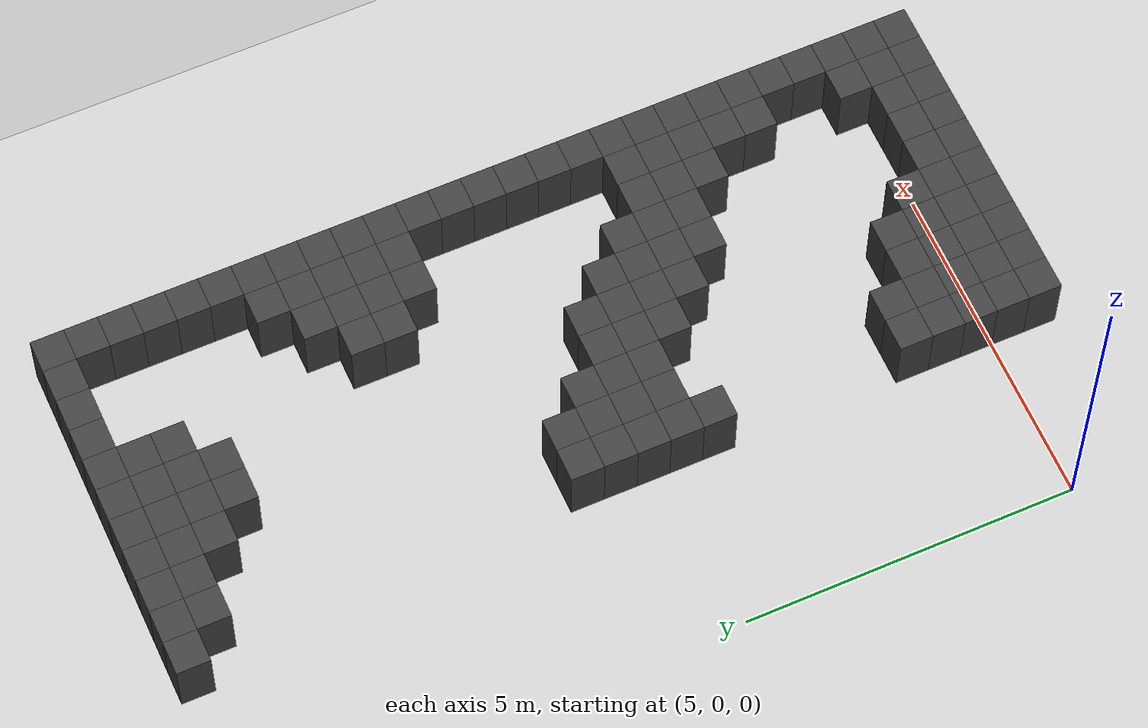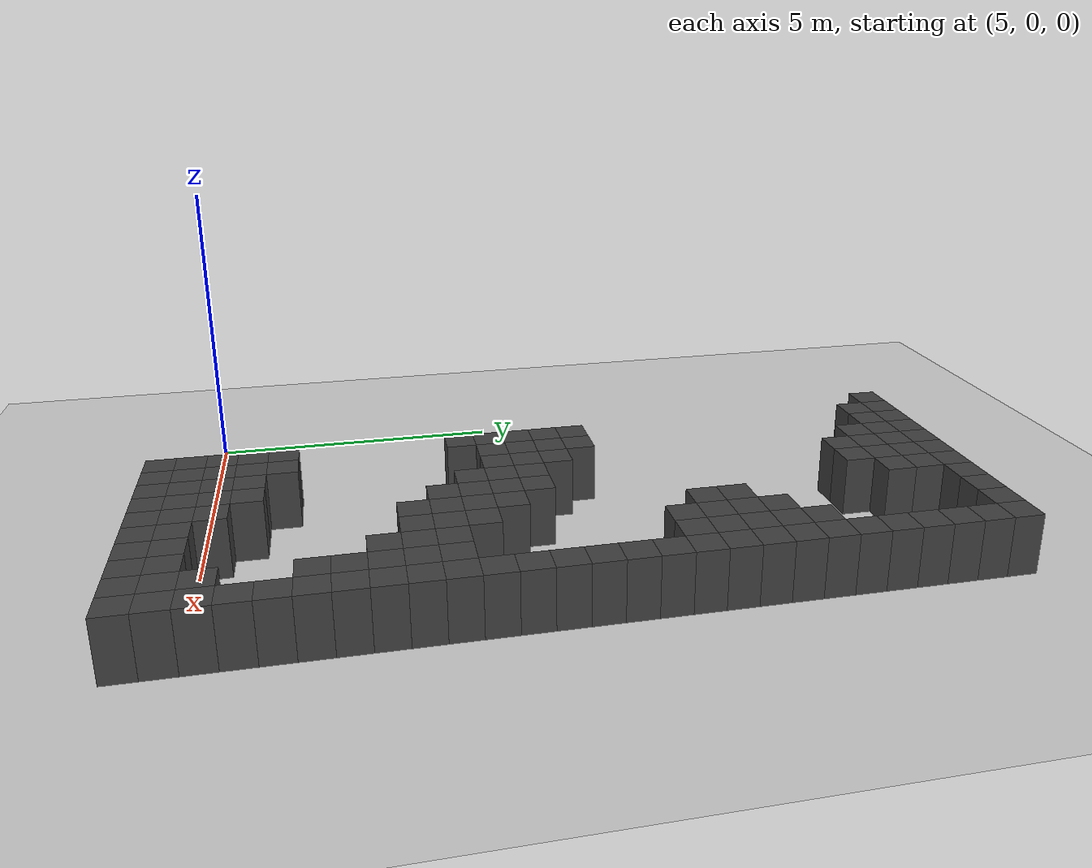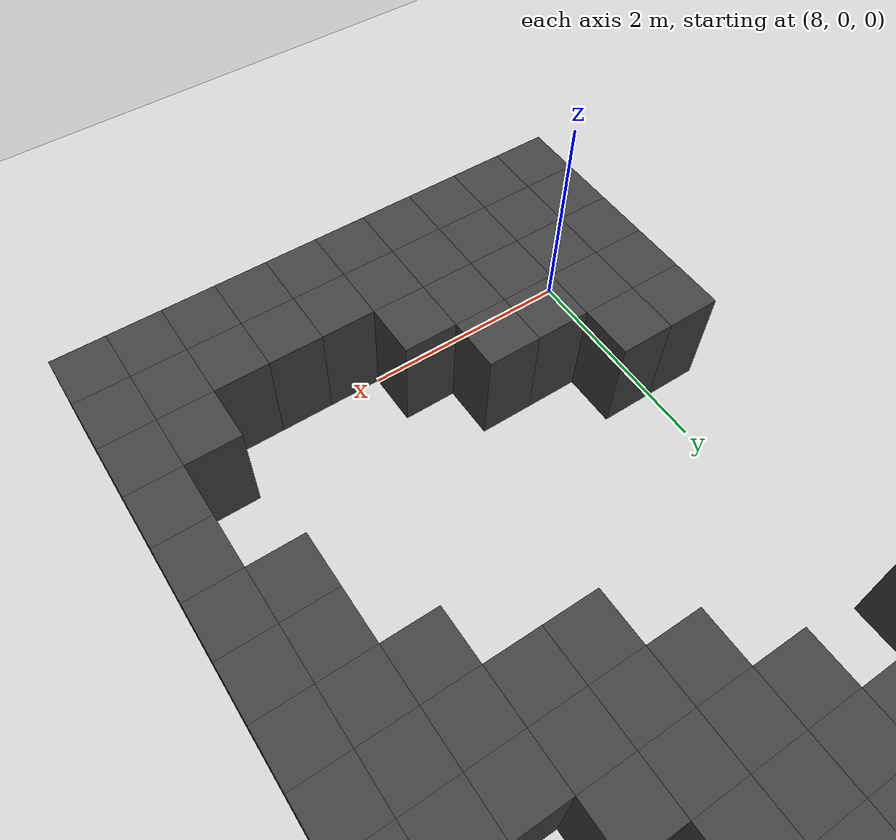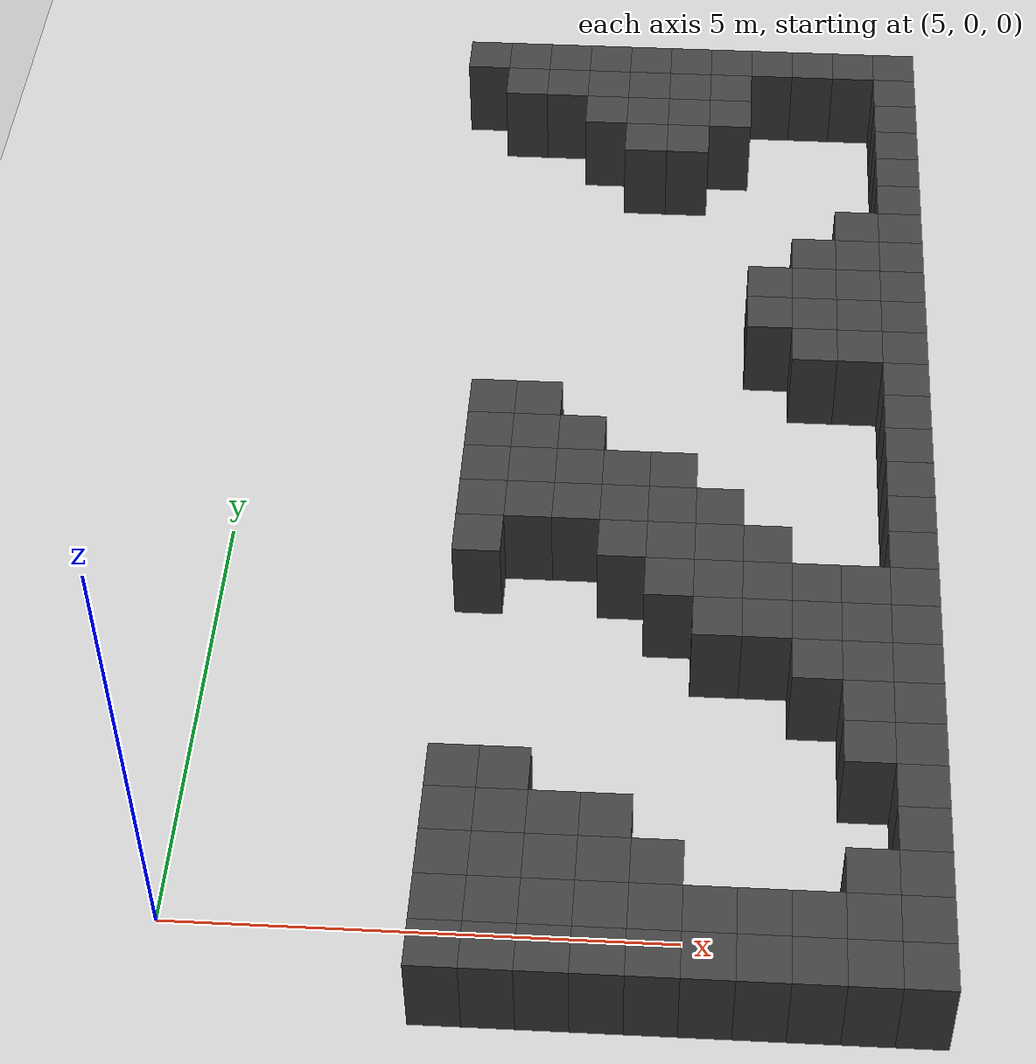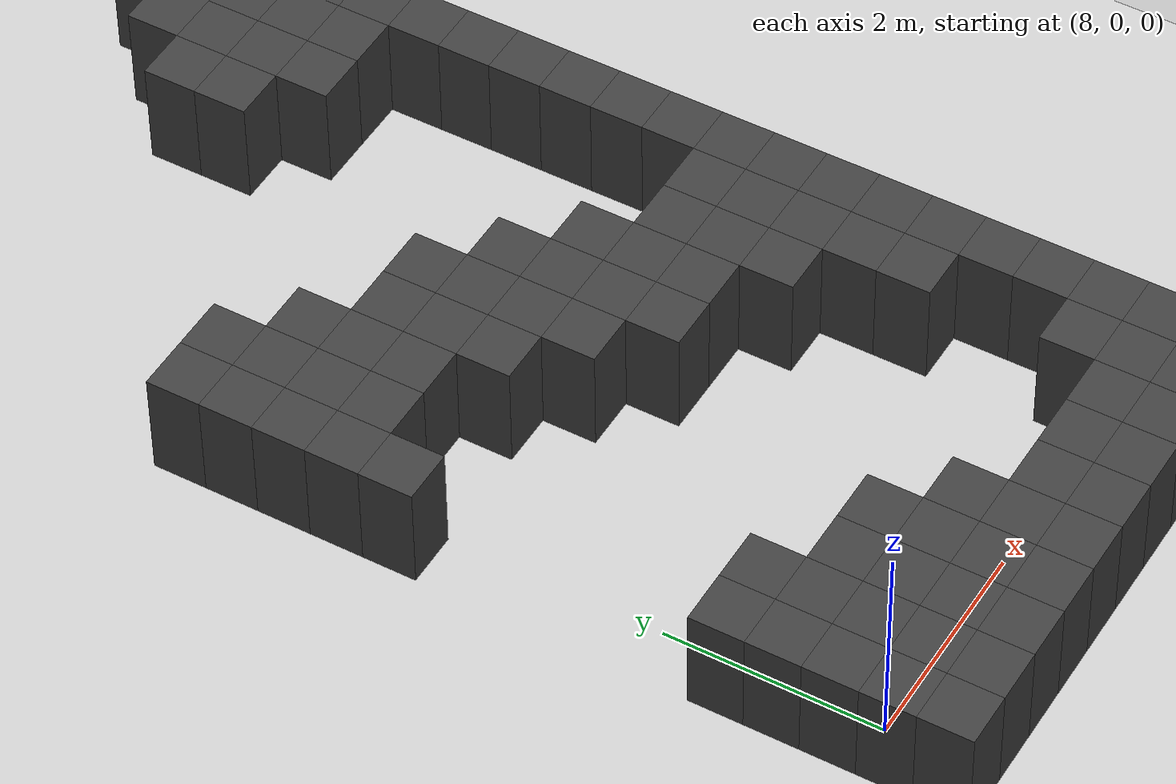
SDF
<sdf version="1.7">
 <world name="map_7972">
  <model name="ground_plane">
   <static>true</static>
   <link name="link">
    <collision name="collision">
     <geometry><plane><normal>0 0 1</normal><size>200 200</size></plane></geometry>
    </collision>
    <visual name="visual">
     <geometry><plane><normal>0 0 1</normal><size>200 200</size></plane></geometry>
     <material><ambient>0.8 0.8 0.8 1</ambient><diffuse>0.8 0.8 0.8 1</diffuse></material>
    </visual>
   </link>
  </model>
  <model name="maze_environment">
   <static>true</static>
   <link name="wall_39">
    <pose>7.250 12.250 0.500 0 0 0</pose>
    <collision name="col"><geometry><box><size>0.5 0.5 1.0</size></box></geometry></collision>
    <visual name="vis">
     <geometry><box><size>0.5 0.5 1.0</size></box></geometry>
     <material><ambient>0.15 0.15 0.15 1</ambient><diffuse>0.25 0.25 0.25 1</diffuse></material>
    </visual>
   </link>
   <link name="wall_40">
    <pose>7.750 12.250 0.500 0 0 0</pose>
    <collision name="col"><geometry><box><size>0.5 0.5 1.0</size></box></geometry></collision>
    <visual name="vis">
     <geometry><box><size>0.5 0.5 1.0</size></box></geometry>
     <material><ambient>0.15 0.15 0.15 1</ambient><diffuse>0.25 0.25 0.25 1</diffuse></material>
    </visual>
   </link>
   <link name="wall_41">
    <pose>8.250 12.250 0.500 0 0 0</pose>
    <collision name="col"><geometry><box><size>0.5 0.5 1.0</size></box></geometry></collision>
    <visual name="vis">
     <geometry><box><size>0.5 0.5 1.0</size></box></geometry>
     <material><ambient>0.15 0.15 0.15 1</ambient><diffuse>0.25 0.25 0.25 1</diffuse></material>
    </visual>
   </link>
   <link name="wall_42">
    <pose>8.750 12.250 0.500 0 0 0</pose>
    <collision name="col"><geometry><box><size>0.5 0.5 1.0</size></box></geometry></collision>
    <visual name="vis">
     <geometry><box><size>0.5 0.5 1.0</size></box></geometry>
     <material><ambient>0.15 0.15 0.15 1</ambient><diffuse>0.25 0.25 0.25 1</diffuse></material>
    </visual>
   </link>
   <link name="wall_43">
    <pose>9.250 12.250 0.500 0 0 0</pose>
    <collision name="col"><geometry><box><size>0.5 0.5 1.0</size></box></geometry></collision>
    <visual name="vis">
     <geometry><box><size>0.5 0.5 1.0</size></box></geometry>
     <material><ambient>0.15 0.15 0.15 1</ambient><diffuse>0.25 0.25 0.25 1</diffuse></material>
    </visual>
   </link>
   <link name="wall_44">
    <pose>9.750 12.250 0.500 0 0 0</pose>
    <collision name="col"><geometry><box><size>0.5 0.5 1.0</size></box></geometry></collision>
    <visual name="vis">
     <geometry><box><size>0.5 0.5 1.0</size></box></geometry>
     <material><ambient>0.15 0.15 0.15 1</ambient><diffuse>0.25 0.25 0.25 1</diffuse></material>
    </visual>
   </link>
   <link name="wall_45">
    <pose>10.250 12.250 0.500 0 0 0</pose>
    <collision name="col"><geometry><box><size>0.5 0.5 1.0</size></box></geometry></collision>
    <visual name="vis">
     <geometry><box><size>0.5 0.5 1.0</size></box></geometry>
     <material><ambient>0.15 0.15 0.15 1</ambient><diffuse>0.25 0.25 0.25 1</diffuse></material>
    </visual>
   </link>
   <link name="wall_46">
    <pose>10.750 12.250 0.500 0 0 0</pose>
    <collision name="col"><geometry><box><size>0.5 0.5 1.0</size></box></geometry></collision>
    <visual name="vis">
     <geometry><box><size>0.5 0.5 1.0</size></box></geometry>
     <material><ambient>0.15 0.15 0.15 1</ambient><diffuse>0.25 0.25 0.25 1</diffuse></material>
    </visual>
   </link>
   <link name="wall_47">
    <pose>11.250 12.250 0.500 0 0 0</pose>
    <collision name="col"><geometry><box><size>0.5 0.5 1.0</size></box></geometry></collision>
    <visual name="vis">
     <geometry><box><size>0.5 0.5 1.0</size></box></geometry>
     <material><ambient>0.15 0.15 0.15 1</ambient><diffuse>0.25 0.25 0.25 1</diffuse></material>
    </visual>
   </link>
   <link name="wall_48">
    <pose>11.750 12.250 0.500 0 0 0</pose>
    <collision name="col"><geometry><box><size>0.5 0.5 1.0</size></box></geometry></collision>
    <visual name="vis">
     <geometry><box><size>0.5 0.5 1.0</size></box></geometry>
     <material><ambient>0.15 0.15 0.15 1</ambient><diffuse>0.25 0.25 0.25 1</diffuse></material>
    </visual>
   </link>
   <link name="wall_49">
    <pose>12.250 12.250 0.500 0 0 0</pose>
    <collision name="col"><geometry><box><size>0.5 0.5 1.0</size></box></geometry></collision>
    <visual name="vis">
     <geometry><box><size>0.5 0.5 1.0</size></box></geometry>
     <material><ambient>0.15 0.15 0.15 1</ambient><diffuse>0.25 0.25 0.25 1</diffuse></material>
    </visual>
   </link>
   <link name="wall_79">
    <pose>7.750 11.750 0.500 0 0 0</pose>
    <collision name="col"><geometry><box><size>0.5 0.5 1.0</size></box></geometry></collision>
    <visual name="vis">
     <geometry><box><size>0.5 0.5 1.0</size></box></geometry>
     <material><ambient>0.15 0.15 0.15 1</ambient><diffuse>0.25 0.25 0.25 1</diffuse></material>
    </visual>
   </link>
   <link name="wall_80">
    <pose>8.250 11.750 0.500 0 0 0</pose>
    <collision name="col"><geometry><box><size>0.5 0.5 1.0</size></box></geometry></collision>
    <visual name="vis">
     <geometry><box><size>0.5 0.5 1.0</size></box></geometry>
     <material><ambient>0.15 0.15 0.15 1</ambient><diffuse>0.25 0.25 0.25 1</diffuse></material>
    </visual>
   </link>
   <link name="wall_81">
    <pose>8.750 11.750 0.500 0 0 0</pose>
    <collision name="col"><geometry><box><size>0.5 0.5 1.0</size></box></geometry></collision>
    <visual name="vis">
     <geometry><box><size>0.5 0.5 1.0</size></box></geometry>
     <material><ambient>0.15 0.15 0.15 1</ambient><diffuse>0.25 0.25 0.25 1</diffuse></material>
    </visual>
   </link>
   <link name="wall_82">
    <pose>9.250 11.750 0.500 0 0 0</pose>
    <collision name="col"><geometry><box><size>0.5 0.5 1.0</size></box></geometry></collision>
    <visual name="vis">
     <geometry><box><size>0.5 0.5 1.0</size></box></geometry>
     <material><ambient>0.15 0.15 0.15 1</ambient><diffuse>0.25 0.25 0.25 1</diffuse></material>
    </visual>
   </link>
   <link name="wall_83">
    <pose>9.750 11.750 0.500 0 0 0</pose>
    <collision name="col"><geometry><box><size>0.5 0.5 1.0</size></box></geometry></collision>
    <visual name="vis">
     <geometry><box><size>0.5 0.5 1.0</size></box></geometry>
     <material><ambient>0.15 0.15 0.15 1</ambient><diffuse>0.25 0.25 0.25 1</diffuse></material>
    </visual>
   </link>
   <link name="wall_84">
    <pose>10.250 11.750 0.500 0 0 0</pose>
    <collision name="col"><geometry><box><size>0.5 0.5 1.0</size></box></geometry></collision>
    <visual name="vis">
     <geometry><box><size>0.5 0.5 1.0</size></box></geometry>
     <material><ambient>0.15 0.15 0.15 1</ambient><diffuse>0.25 0.25 0.25 1</diffuse></material>
    </visual>
   </link>
   <link name="wall_85">
    <pose>12.250 11.750 0.500 0 0 0</pose>
    <collision name="col"><geometry><box><size>0.5 0.5 1.0</size></box></geometry></collision>
    <visual name="vis">
     <geometry><box><size>0.5 0.5 1.0</size></box></geometry>
     <material><ambient>0.15 0.15 0.15 1</ambient><diffuse>0.25 0.25 0.25 1</diffuse></material>
    </visual>
   </link>
   <link name="wall_108">
    <pose>8.750 11.250 0.500 0 0 0</pose>
    <collision name="col"><geometry><box><size>0.5 0.5 1.0</size></box></geometry></collision>
    <visual name="vis">
     <geometry><box><size>0.5 0.5 1.0</size></box></geometry>
     <material><ambient>0.15 0.15 0.15 1</ambient><diffuse>0.25 0.25 0.25 1</diffuse></material>
    </visual>
   </link>
   <link name="wall_109">
    <pose>9.250 11.250 0.500 0 0 0</pose>
    <collision name="col"><geometry><box><size>0.5 0.5 1.0</size></box></geometry></collision>
    <visual name="vis">
     <geometry><box><size>0.5 0.5 1.0</size></box></geometry>
     <material><ambient>0.15 0.15 0.15 1</ambient><diffuse>0.25 0.25 0.25 1</diffuse></material>
    </visual>
   </link>
   <link name="wall_110">
    <pose>9.750 11.250 0.500 0 0 0</pose>
    <collision name="col"><geometry><box><size>0.5 0.5 1.0</size></box></geometry></collision>
    <visual name="vis">
     <geometry><box><size>0.5 0.5 1.0</size></box></geometry>
     <material><ambient>0.15 0.15 0.15 1</ambient><diffuse>0.25 0.25 0.25 1</diffuse></material>
    </visual>
   </link>
   <link name="wall_111">
    <pose>10.250 11.250 0.500 0 0 0</pose>
    <collision name="col"><geometry><box><size>0.5 0.5 1.0</size></box></geometry></collision>
    <visual name="vis">
     <geometry><box><size>0.5 0.5 1.0</size></box></geometry>
     <material><ambient>0.15 0.15 0.15 1</ambient><diffuse>0.25 0.25 0.25 1</diffuse></material>
    </visual>
   </link>
   <link name="wall_112">
    <pose>12.250 11.250 0.500 0 0 0</pose>
    <collision name="col"><geometry><box><size>0.5 0.5 1.0</size></box></geometry></collision>
    <visual name="vis">
     <geometry><box><size>0.5 0.5 1.0</size></box></geometry>
     <material><ambient>0.15 0.15 0.15 1</ambient><diffuse>0.25 0.25 0.25 1</diffuse></material>
    </visual>
   </link>
   <link name="wall_127">
    <pose>9.250 10.750 0.500 0 0 0</pose>
    <collision name="col"><geometry><box><size>0.5 0.5 1.0</size></box></geometry></collision>
    <visual name="vis">
     <geometry><box><size>0.5 0.5 1.0</size></box></geometry>
     <material><ambient>0.15 0.15 0.15 1</ambient><diffuse>0.25 0.25 0.25 1</diffuse></material>
    </visual>
   </link>
   <link name="wall_128">
    <pose>9.750 10.750 0.500 0 0 0</pose>
    <collision name="col"><geometry><box><size>0.5 0.5 1.0</size></box></geometry></collision>
    <visual name="vis">
     <geometry><box><size>0.5 0.5 1.0</size></box></geometry>
     <material><ambient>0.15 0.15 0.15 1</ambient><diffuse>0.25 0.25 0.25 1</diffuse></material>
    </visual>
   </link>
   <link name="wall_129">
    <pose>12.250 10.750 0.500 0 0 0</pose>
    <collision name="col"><geometry><box><size>0.5 0.5 1.0</size></box></geometry></collision>
    <visual name="vis">
     <geometry><box><size>0.5 0.5 1.0</size></box></geometry>
     <material><ambient>0.15 0.15 0.15 1</ambient><diffuse>0.25 0.25 0.25 1</diffuse></material>
    </visual>
   </link>
   <link name="wall_142">
    <pose>12.250 10.250 0.500 0 0 0</pose>
    <collision name="col"><geometry><box><size>0.5 0.5 1.0</size></box></geometry></collision>
    <visual name="vis">
     <geometry><box><size>0.5 0.5 1.0</size></box></geometry>
     <material><ambient>0.15 0.15 0.15 1</ambient><diffuse>0.25 0.25 0.25 1</diffuse></material>
    </visual>
   </link>
   <link name="wall_151">
    <pose>12.250 9.750 0.500 0 0 0</pose>
    <collision name="col"><geometry><box><size>0.5 0.5 1.0</size></box></geometry></collision>
    <visual name="vis">
     <geometry><box><size>0.5 0.5 1.0</size></box></geometry>
     <material><ambient>0.15 0.15 0.15 1</ambient><diffuse>0.25 0.25 0.25 1</diffuse></material>
    </visual>
   </link>
   <link name="wall_159">
    <pose>11.750 9.250 0.500 0 0 0</pose>
    <collision name="col"><geometry><box><size>0.5 0.5 1.0</size></box></geometry></collision>
    <visual name="vis">
     <geometry><box><size>0.5 0.5 1.0</size></box></geometry>
     <material><ambient>0.15 0.15 0.15 1</ambient><diffuse>0.25 0.25 0.25 1</diffuse></material>
    </visual>
   </link>
   <link name="wall_160">
    <pose>12.250 9.250 0.500 0 0 0</pose>
    <collision name="col"><geometry><box><size>0.5 0.5 1.0</size></box></geometry></collision>
    <visual name="vis">
     <geometry><box><size>0.5 0.5 1.0</size></box></geometry>
     <material><ambient>0.15 0.15 0.15 1</ambient><diffuse>0.25 0.25 0.25 1</diffuse></material>
    </visual>
   </link>
   <link name="wall_172">
    <pose>11.250 8.750 0.500 0 0 0</pose>
    <collision name="col"><geometry><box><size>0.5 0.5 1.0</size></box></geometry></collision>
    <visual name="vis">
     <geometry><box><size>0.5 0.5 1.0</size></box></geometry>
     <material><ambient>0.15 0.15 0.15 1</ambient><diffuse>0.25 0.25 0.25 1</diffuse></material>
    </visual>
   </link>
   <link name="wall_173">
    <pose>11.750 8.750 0.500 0 0 0</pose>
    <collision name="col"><geometry><box><size>0.5 0.5 1.0</size></box></geometry></collision>
    <visual name="vis">
     <geometry><box><size>0.5 0.5 1.0</size></box></geometry>
     <material><ambient>0.15 0.15 0.15 1</ambient><diffuse>0.25 0.25 0.25 1</diffuse></material>
    </visual>
   </link>
   <link name="wall_174">
    <pose>12.250 8.750 0.500 0 0 0</pose>
    <collision name="col"><geometry><box><size>0.5 0.5 1.0</size></box></geometry></collision>
    <visual name="vis">
     <geometry><box><size>0.5 0.5 1.0</size></box></geometry>
     <material><ambient>0.15 0.15 0.15 1</ambient><diffuse>0.25 0.25 0.25 1</diffuse></material>
    </visual>
   </link>
   <link name="wall_192">
    <pose>10.750 8.250 0.500 0 0 0</pose>
    <collision name="col"><geometry><box><size>0.5 0.5 1.0</size></box></geometry></collision>
    <visual name="vis">
     <geometry><box><size>0.5 0.5 1.0</size></box></geometry>
     <material><ambient>0.15 0.15 0.15 1</ambient><diffuse>0.25 0.25 0.25 1</diffuse></material>
    </visual>
   </link>
   <link name="wall_193">
    <pose>11.250 8.250 0.500 0 0 0</pose>
    <collision name="col"><geometry><box><size>0.5 0.5 1.0</size></box></geometry></collision>
    <visual name="vis">
     <geometry><box><size>0.5 0.5 1.0</size></box></geometry>
     <material><ambient>0.15 0.15 0.15 1</ambient><diffuse>0.25 0.25 0.25 1</diffuse></material>
    </visual>
   </link>
   <link name="wall_194">
    <pose>11.750 8.250 0.500 0 0 0</pose>
    <collision name="col"><geometry><box><size>0.5 0.5 1.0</size></box></geometry></collision>
    <visual name="vis">
     <geometry><box><size>0.5 0.5 1.0</size></box></geometry>
     <material><ambient>0.15 0.15 0.15 1</ambient><diffuse>0.25 0.25 0.25 1</diffuse></material>
    </visual>
   </link>
   <link name="wall_195">
    <pose>12.250 8.250 0.500 0 0 0</pose>
    <collision name="col"><geometry><box><size>0.5 0.5 1.0</size></box></geometry></collision>
    <visual name="vis">
     <geometry><box><size>0.5 0.5 1.0</size></box></geometry>
     <material><ambient>0.15 0.15 0.15 1</ambient><diffuse>0.25 0.25 0.25 1</diffuse></material>
    </visual>
   </link>
   <link name="wall_217">
    <pose>10.750 7.750 0.500 0 0 0</pose>
    <collision name="col"><geometry><box><size>0.5 0.5 1.0</size></box></geometry></collision>
    <visual name="vis">
     <geometry><box><size>0.5 0.5 1.0</size></box></geometry>
     <material><ambient>0.15 0.15 0.15 1</ambient><diffuse>0.25 0.25 0.25 1</diffuse></material>
    </visual>
   </link>
   <link name="wall_218">
    <pose>11.250 7.750 0.500 0 0 0</pose>
    <collision name="col"><geometry><box><size>0.5 0.5 1.0</size></box></geometry></collision>
    <visual name="vis">
     <geometry><box><size>0.5 0.5 1.0</size></box></geometry>
     <material><ambient>0.15 0.15 0.15 1</ambient><diffuse>0.25 0.25 0.25 1</diffuse></material>
    </visual>
   </link>
   <link name="wall_219">
    <pose>11.750 7.750 0.500 0 0 0</pose>
    <collision name="col"><geometry><box><size>0.5 0.5 1.0</size></box></geometry></collision>
    <visual name="vis">
     <geometry><box><size>0.5 0.5 1.0</size></box></geometry>
     <material><ambient>0.15 0.15 0.15 1</ambient><diffuse>0.25 0.25 0.25 1</diffuse></material>
    </visual>
   </link>
   <link name="wall_220">
    <pose>12.250 7.750 0.500 0 0 0</pose>
    <collision name="col"><geometry><box><size>0.5 0.5 1.0</size></box></geometry></collision>
    <visual name="vis">
     <geometry><box><size>0.5 0.5 1.0</size></box></geometry>
     <material><ambient>0.15 0.15 0.15 1</ambient><diffuse>0.25 0.25 0.25 1</diffuse></material>
    </visual>
   </link>
   <link name="wall_238">
    <pose>11.250 7.250 0.500 0 0 0</pose>
    <collision name="col"><geometry><box><size>0.5 0.5 1.0</size></box></geometry></collision>
    <visual name="vis">
     <geometry><box><size>0.5 0.5 1.0</size></box></geometry>
     <material><ambient>0.15 0.15 0.15 1</ambient><diffuse>0.25 0.25 0.25 1</diffuse></material>
    </visual>
   </link>
   <link name="wall_239">
    <pose>11.750 7.250 0.500 0 0 0</pose>
    <collision name="col"><geometry><box><size>0.5 0.5 1.0</size></box></geometry></collision>
    <visual name="vis">
     <geometry><box><size>0.5 0.5 1.0</size></box></geometry>
     <material><ambient>0.15 0.15 0.15 1</ambient><diffuse>0.25 0.25 0.25 1</diffuse></material>
    </visual>
   </link>
   <link name="wall_240">
    <pose>12.250 7.250 0.500 0 0 0</pose>
    <collision name="col"><geometry><box><size>0.5 0.5 1.0</size></box></geometry></collision>
    <visual name="vis">
     <geometry><box><size>0.5 0.5 1.0</size></box></geometry>
     <material><ambient>0.15 0.15 0.15 1</ambient><diffuse>0.25 0.25 0.25 1</diffuse></material>
    </visual>
   </link>
   <link name="wall_251">
    <pose>12.250 6.750 0.500 0 0 0</pose>
    <collision name="col"><geometry><box><size>0.5 0.5 1.0</size></box></geometry></collision>
    <visual name="vis">
     <geometry><box><size>0.5 0.5 1.0</size></box></geometry>
     <material><ambient>0.15 0.15 0.15 1</ambient><diffuse>0.25 0.25 0.25 1</diffuse></material>
    </visual>
   </link>
   <link name="wall_257">
    <pose>7.750 6.250 0.500 0 0 0</pose>
    <collision name="col"><geometry><box><size>0.5 0.5 1.0</size></box></geometry></collision>
    <visual name="vis">
     <geometry><box><size>0.5 0.5 1.0</size></box></geometry>
     <material><ambient>0.15 0.15 0.15 1</ambient><diffuse>0.25 0.25 0.25 1</diffuse></material>
    </visual>
   </link>
   <link name="wall_258">
    <pose>8.250 6.250 0.500 0 0 0</pose>
    <collision name="col"><geometry><box><size>0.5 0.5 1.0</size></box></geometry></collision>
    <visual name="vis">
     <geometry><box><size>0.5 0.5 1.0</size></box></geometry>
     <material><ambient>0.15 0.15 0.15 1</ambient><diffuse>0.25 0.25 0.25 1</diffuse></material>
    </visual>
   </link>
   <link name="wall_259">
    <pose>12.250 6.250 0.500 0 0 0</pose>
    <collision name="col"><geometry><box><size>0.5 0.5 1.0</size></box></geometry></collision>
    <visual name="vis">
     <geometry><box><size>0.5 0.5 1.0</size></box></geometry>
     <material><ambient>0.15 0.15 0.15 1</ambient><diffuse>0.25 0.25 0.25 1</diffuse></material>
    </visual>
   </link>
   <link name="wall_265">
    <pose>7.750 5.750 0.500 0 0 0</pose>
    <collision name="col"><geometry><box><size>0.5 0.5 1.0</size></box></geometry></collision>
    <visual name="vis">
     <geometry><box><size>0.5 0.5 1.0</size></box></geometry>
     <material><ambient>0.15 0.15 0.15 1</ambient><diffuse>0.25 0.25 0.25 1</diffuse></material>
    </visual>
   </link>
   <link name="wall_266">
    <pose>8.250 5.750 0.500 0 0 0</pose>
    <collision name="col"><geometry><box><size>0.5 0.5 1.0</size></box></geometry></collision>
    <visual name="vis">
     <geometry><box><size>0.5 0.5 1.0</size></box></geometry>
     <material><ambient>0.15 0.15 0.15 1</ambient><diffuse>0.25 0.25 0.25 1</diffuse></material>
    </visual>
   </link>
   <link name="wall_267">
    <pose>8.750 5.750 0.500 0 0 0</pose>
    <collision name="col"><geometry><box><size>0.5 0.5 1.0</size></box></geometry></collision>
    <visual name="vis">
     <geometry><box><size>0.5 0.5 1.0</size></box></geometry>
     <material><ambient>0.15 0.15 0.15 1</ambient><diffuse>0.25 0.25 0.25 1</diffuse></material>
    </visual>
   </link>
   <link name="wall_268">
    <pose>12.250 5.750 0.500 0 0 0</pose>
    <collision name="col"><geometry><box><size>0.5 0.5 1.0</size></box></geometry></collision>
    <visual name="vis">
     <geometry><box><size>0.5 0.5 1.0</size></box></geometry>
     <material><ambient>0.15 0.15 0.15 1</ambient><diffuse>0.25 0.25 0.25 1</diffuse></material>
    </visual>
   </link>
   <link name="wall_275">
    <pose>7.750 5.250 0.500 0 0 0</pose>
    <collision name="col"><geometry><box><size>0.5 0.5 1.0</size></box></geometry></collision>
    <visual name="vis">
     <geometry><box><size>0.5 0.5 1.0</size></box></geometry>
     <material><ambient>0.15 0.15 0.15 1</ambient><diffuse>0.25 0.25 0.25 1</diffuse></material>
    </visual>
   </link>
   <link name="wall_276">
    <pose>8.250 5.250 0.500 0 0 0</pose>
    <collision name="col"><geometry><box><size>0.5 0.5 1.0</size></box></geometry></collision>
    <visual name="vis">
     <geometry><box><size>0.5 0.5 1.0</size></box></geometry>
     <material><ambient>0.15 0.15 0.15 1</ambient><diffuse>0.25 0.25 0.25 1</diffuse></material>
    </visual>
   </link>
   <link name="wall_277">
    <pose>8.750 5.250 0.500 0 0 0</pose>
    <collision name="col"><geometry><box><size>0.5 0.5 1.0</size></box></geometry></collision>
    <visual name="vis">
     <geometry><box><size>0.5 0.5 1.0</size></box></geometry>
     <material><ambient>0.15 0.15 0.15 1</ambient><diffuse>0.25 0.25 0.25 1</diffuse></material>
    </visual>
   </link>
   <link name="wall_278">
    <pose>9.250 5.250 0.500 0 0 0</pose>
    <collision name="col"><geometry><box><size>0.5 0.5 1.0</size></box></geometry></collision>
    <visual name="vis">
     <geometry><box><size>0.5 0.5 1.0</size></box></geometry>
     <material><ambient>0.15 0.15 0.15 1</ambient><diffuse>0.25 0.25 0.25 1</diffuse></material>
    </visual>
   </link>
   <link name="wall_279">
    <pose>9.750 5.250 0.500 0 0 0</pose>
    <collision name="col"><geometry><box><size>0.5 0.5 1.0</size></box></geometry></collision>
    <visual name="vis">
     <geometry><box><size>0.5 0.5 1.0</size></box></geometry>
     <material><ambient>0.15 0.15 0.15 1</ambient><diffuse>0.25 0.25 0.25 1</diffuse></material>
    </visual>
   </link>
   <link name="wall_280">
    <pose>12.250 5.250 0.500 0 0 0</pose>
    <collision name="col"><geometry><box><size>0.5 0.5 1.0</size></box></geometry></collision>
    <visual name="vis">
     <geometry><box><size>0.5 0.5 1.0</size></box></geometry>
     <material><ambient>0.15 0.15 0.15 1</ambient><diffuse>0.25 0.25 0.25 1</diffuse></material>
    </visual>
   </link>
   <link name="wall_292">
    <pose>7.750 4.750 0.500 0 0 0</pose>
    <collision name="col"><geometry><box><size>0.5 0.5 1.0</size></box></geometry></collision>
    <visual name="vis">
     <geometry><box><size>0.5 0.5 1.0</size></box></geometry>
     <material><ambient>0.15 0.15 0.15 1</ambient><diffuse>0.25 0.25 0.25 1</diffuse></material>
    </visual>
   </link>
   <link name="wall_293">
    <pose>8.250 4.750 0.500 0 0 0</pose>
    <collision name="col"><geometry><box><size>0.5 0.5 1.0</size></box></geometry></collision>
    <visual name="vis">
     <geometry><box><size>0.5 0.5 1.0</size></box></geometry>
     <material><ambient>0.15 0.15 0.15 1</ambient><diffuse>0.25 0.25 0.25 1</diffuse></material>
    </visual>
   </link>
   <link name="wall_294">
    <pose>8.750 4.750 0.500 0 0 0</pose>
    <collision name="col"><geometry><box><size>0.5 0.5 1.0</size></box></geometry></collision>
    <visual name="vis">
     <geometry><box><size>0.5 0.5 1.0</size></box></geometry>
     <material><ambient>0.15 0.15 0.15 1</ambient><diffuse>0.25 0.25 0.25 1</diffuse></material>
    </visual>
   </link>
   <link name="wall_295">
    <pose>9.250 4.750 0.500 0 0 0</pose>
    <collision name="col"><geometry><box><size>0.5 0.5 1.0</size></box></geometry></collision>
    <visual name="vis">
     <geometry><box><size>0.5 0.5 1.0</size></box></geometry>
     <material><ambient>0.15 0.15 0.15 1</ambient><diffuse>0.25 0.25 0.25 1</diffuse></material>
    </visual>
   </link>
   <link name="wall_296">
    <pose>9.750 4.750 0.500 0 0 0</pose>
    <collision name="col"><geometry><box><size>0.5 0.5 1.0</size></box></geometry></collision>
    <visual name="vis">
     <geometry><box><size>0.5 0.5 1.0</size></box></geometry>
     <material><ambient>0.15 0.15 0.15 1</ambient><diffuse>0.25 0.25 0.25 1</diffuse></material>
    </visual>
   </link>
   <link name="wall_297">
    <pose>10.250 4.750 0.500 0 0 0</pose>
    <collision name="col"><geometry><box><size>0.5 0.5 1.0</size></box></geometry></collision>
    <visual name="vis">
     <geometry><box><size>0.5 0.5 1.0</size></box></geometry>
     <material><ambient>0.15 0.15 0.15 1</ambient><diffuse>0.25 0.25 0.25 1</diffuse></material>
    </visual>
   </link>
   <link name="wall_298">
    <pose>12.250 4.750 0.500 0 0 0</pose>
    <collision name="col"><geometry><box><size>0.5 0.5 1.0</size></box></geometry></collision>
    <visual name="vis">
     <geometry><box><size>0.5 0.5 1.0</size></box></geometry>
     <material><ambient>0.15 0.15 0.15 1</ambient><diffuse>0.25 0.25 0.25 1</diffuse></material>
    </visual>
   </link>
   <link name="wall_312">
    <pose>7.750 4.250 0.500 0 0 0</pose>
    <collision name="col"><geometry><box><size>0.5 0.5 1.0</size></box></geometry></collision>
    <visual name="vis">
     <geometry><box><size>0.5 0.5 1.0</size></box></geometry>
     <material><ambient>0.15 0.15 0.15 1</ambient><diffuse>0.25 0.25 0.25 1</diffuse></material>
    </visual>
   </link>
   <link name="wall_313">
    <pose>9.250 4.250 0.500 0 0 0</pose>
    <collision name="col"><geometry><box><size>0.5 0.5 1.0</size></box></geometry></collision>
    <visual name="vis">
     <geometry><box><size>0.5 0.5 1.0</size></box></geometry>
     <material><ambient>0.15 0.15 0.15 1</ambient><diffuse>0.25 0.25 0.25 1</diffuse></material>
    </visual>
   </link>
   <link name="wall_314">
    <pose>9.750 4.250 0.500 0 0 0</pose>
    <collision name="col"><geometry><box><size>0.5 0.5 1.0</size></box></geometry></collision>
    <visual name="vis">
     <geometry><box><size>0.5 0.5 1.0</size></box></geometry>
     <material><ambient>0.15 0.15 0.15 1</ambient><diffuse>0.25 0.25 0.25 1</diffuse></material>
    </visual>
   </link>
   <link name="wall_315">
    <pose>10.250 4.250 0.500 0 0 0</pose>
    <collision name="col"><geometry><box><size>0.5 0.5 1.0</size></box></geometry></collision>
    <visual name="vis">
     <geometry><box><size>0.5 0.5 1.0</size></box></geometry>
     <material><ambient>0.15 0.15 0.15 1</ambient><diffuse>0.25 0.25 0.25 1</diffuse></material>
    </visual>
   </link>
   <link name="wall_316">
    <pose>10.750 4.250 0.500 0 0 0</pose>
    <collision name="col"><geometry><box><size>0.5 0.5 1.0</size></box></geometry></collision>
    <visual name="vis">
     <geometry><box><size>0.5 0.5 1.0</size></box></geometry>
     <material><ambient>0.15 0.15 0.15 1</ambient><diffuse>0.25 0.25 0.25 1</diffuse></material>
    </visual>
   </link>
   <link name="wall_317">
    <pose>12.250 4.250 0.500 0 0 0</pose>
    <collision name="col"><geometry><box><size>0.5 0.5 1.0</size></box></geometry></collision>
    <visual name="vis">
     <geometry><box><size>0.5 0.5 1.0</size></box></geometry>
     <material><ambient>0.15 0.15 0.15 1</ambient><diffuse>0.25 0.25 0.25 1</diffuse></material>
    </visual>
   </link>
   <link name="wall_328">
    <pose>9.750 3.750 0.500 0 0 0</pose>
    <collision name="col"><geometry><box><size>0.5 0.5 1.0</size></box></geometry></collision>
    <visual name="vis">
     <geometry><box><size>0.5 0.5 1.0</size></box></geometry>
     <material><ambient>0.15 0.15 0.15 1</ambient><diffuse>0.25 0.25 0.25 1</diffuse></material>
    </visual>
   </link>
   <link name="wall_329">
    <pose>10.250 3.750 0.500 0 0 0</pose>
    <collision name="col"><geometry><box><size>0.5 0.5 1.0</size></box></geometry></collision>
    <visual name="vis">
     <geometry><box><size>0.5 0.5 1.0</size></box></geometry>
     <material><ambient>0.15 0.15 0.15 1</ambient><diffuse>0.25 0.25 0.25 1</diffuse></material>
    </visual>
   </link>
   <link name="wall_330">
    <pose>10.750 3.750 0.500 0 0 0</pose>
    <collision name="col"><geometry><box><size>0.5 0.5 1.0</size></box></geometry></collision>
    <visual name="vis">
     <geometry><box><size>0.5 0.5 1.0</size></box></geometry>
     <material><ambient>0.15 0.15 0.15 1</ambient><diffuse>0.25 0.25 0.25 1</diffuse></material>
    </visual>
   </link>
   <link name="wall_331">
    <pose>11.250 3.750 0.500 0 0 0</pose>
    <collision name="col"><geometry><box><size>0.5 0.5 1.0</size></box></geometry></collision>
    <visual name="vis">
     <geometry><box><size>0.5 0.5 1.0</size></box></geometry>
     <material><ambient>0.15 0.15 0.15 1</ambient><diffuse>0.25 0.25 0.25 1</diffuse></material>
    </visual>
   </link>
   <link name="wall_332">
    <pose>11.750 3.750 0.500 0 0 0</pose>
    <collision name="col"><geometry><box><size>0.5 0.5 1.0</size></box></geometry></collision>
    <visual name="vis">
     <geometry><box><size>0.5 0.5 1.0</size></box></geometry>
     <material><ambient>0.15 0.15 0.15 1</ambient><diffuse>0.25 0.25 0.25 1</diffuse></material>
    </visual>
   </link>
   <link name="wall_333">
    <pose>12.250 3.750 0.500 0 0 0</pose>
    <collision name="col"><geometry><box><size>0.5 0.5 1.0</size></box></geometry></collision>
    <visual name="vis">
     <geometry><box><size>0.5 0.5 1.0</size></box></geometry>
     <material><ambient>0.15 0.15 0.15 1</ambient><diffuse>0.25 0.25 0.25 1</diffuse></material>
    </visual>
   </link>
   <link name="wall_339">
    <pose>10.250 3.250 0.500 0 0 0</pose>
    <collision name="col"><geometry><box><size>0.5 0.5 1.0</size></box></geometry></collision>
    <visual name="vis">
     <geometry><box><size>0.5 0.5 1.0</size></box></geometry>
     <material><ambient>0.15 0.15 0.15 1</ambient><diffuse>0.25 0.25 0.25 1</diffuse></material>
    </visual>
   </link>
   <link name="wall_340">
    <pose>10.750 3.250 0.500 0 0 0</pose>
    <collision name="col"><geometry><box><size>0.5 0.5 1.0</size></box></geometry></collision>
    <visual name="vis">
     <geometry><box><size>0.5 0.5 1.0</size></box></geometry>
     <material><ambient>0.15 0.15 0.15 1</ambient><diffuse>0.25 0.25 0.25 1</diffuse></material>
    </visual>
   </link>
   <link name="wall_341">
    <pose>11.250 3.250 0.500 0 0 0</pose>
    <collision name="col"><geometry><box><size>0.5 0.5 1.0</size></box></geometry></collision>
    <visual name="vis">
     <geometry><box><size>0.5 0.5 1.0</size></box></geometry>
     <material><ambient>0.15 0.15 0.15 1</ambient><diffuse>0.25 0.25 0.25 1</diffuse></material>
    </visual>
   </link>
   <link name="wall_342">
    <pose>11.750 3.250 0.500 0 0 0</pose>
    <collision name="col"><geometry><box><size>0.5 0.5 1.0</size></box></geometry></collision>
    <visual name="vis">
     <geometry><box><size>0.5 0.5 1.0</size></box></geometry>
     <material><ambient>0.15 0.15 0.15 1</ambient><diffuse>0.25 0.25 0.25 1</diffuse></material>
    </visual>
   </link>
   <link name="wall_343">
    <pose>12.250 3.250 0.500 0 0 0</pose>
    <collision name="col"><geometry><box><size>0.5 0.5 1.0</size></box></geometry></collision>
    <visual name="vis">
     <geometry><box><size>0.5 0.5 1.0</size></box></geometry>
     <material><ambient>0.15 0.15 0.15 1</ambient><diffuse>0.25 0.25 0.25 1</diffuse></material>
    </visual>
   </link>
   <link name="wall_346">
    <pose>11.250 2.750 0.500 0 0 0</pose>
    <collision name="col"><geometry><box><size>0.5 0.5 1.0</size></box></geometry></collision>
    <visual name="vis">
     <geometry><box><size>0.5 0.5 1.0</size></box></geometry>
     <material><ambient>0.15 0.15 0.15 1</ambient><diffuse>0.25 0.25 0.25 1</diffuse></material>
    </visual>
   </link>
   <link name="wall_347">
    <pose>11.750 2.750 0.500 0 0 0</pose>
    <collision name="col"><geometry><box><size>0.5 0.5 1.0</size></box></geometry></collision>
    <visual name="vis">
     <geometry><box><size>0.5 0.5 1.0</size></box></geometry>
     <material><ambient>0.15 0.15 0.15 1</ambient><diffuse>0.25 0.25 0.25 1</diffuse></material>
    </visual>
   </link>
   <link name="wall_348">
    <pose>12.250 2.750 0.500 0 0 0</pose>
    <collision name="col"><geometry><box><size>0.5 0.5 1.0</size></box></geometry></collision>
    <visual name="vis">
     <geometry><box><size>0.5 0.5 1.0</size></box></geometry>
     <material><ambient>0.15 0.15 0.15 1</ambient><diffuse>0.25 0.25 0.25 1</diffuse></material>
    </visual>
   </link>
   <link name="wall_351">
    <pose>11.750 2.250 0.500 0 0 0</pose>
    <collision name="col"><geometry><box><size>0.5 0.5 1.0</size></box></geometry></collision>
    <visual name="vis">
     <geometry><box><size>0.5 0.5 1.0</size></box></geometry>
     <material><ambient>0.15 0.15 0.15 1</ambient><diffuse>0.25 0.25 0.25 1</diffuse></material>
    </visual>
   </link>
   <link name="wall_352">
    <pose>12.250 2.250 0.500 0 0 0</pose>
    <collision name="col"><geometry><box><size>0.5 0.5 1.0</size></box></geometry></collision>
    <visual name="vis">
     <geometry><box><size>0.5 0.5 1.0</size></box></geometry>
     <material><ambient>0.15 0.15 0.15 1</ambient><diffuse>0.25 0.25 0.25 1</diffuse></material>
    </visual>
   </link>
   <link name="wall_354">
    <pose>11.750 1.750 0.500 0 0 0</pose>
    <collision name="col"><geometry><box><size>0.5 0.5 1.0</size></box></geometry></collision>
    <visual name="vis">
     <geometry><box><size>0.5 0.5 1.0</size></box></geometry>
     <material><ambient>0.15 0.15 0.15 1</ambient><diffuse>0.25 0.25 0.25 1</diffuse></material>
    </visual>
   </link>
   <link name="wall_355">
    <pose>12.250 1.750 0.500 0 0 0</pose>
    <collision name="col"><geometry><box><size>0.5 0.5 1.0</size></box></geometry></collision>
    <visual name="vis">
     <geometry><box><size>0.5 0.5 1.0</size></box></geometry>
     <material><ambient>0.15 0.15 0.15 1</ambient><diffuse>0.25 0.25 0.25 1</diffuse></material>
    </visual>
   </link>
   <link name="wall_357">
    <pose>7.750 1.250 0.500 0 0 0</pose>
    <collision name="col"><geometry><box><size>0.5 0.5 1.0</size></box></geometry></collision>
    <visual name="vis">
     <geometry><box><size>0.5 0.5 1.0</size></box></geometry>
     <material><ambient>0.15 0.15 0.15 1</ambient><diffuse>0.25 0.25 0.25 1</diffuse></material>
    </visual>
   </link>
   <link name="wall_358">
    <pose>8.250 1.250 0.500 0 0 0</pose>
    <collision name="col"><geometry><box><size>0.5 0.5 1.0</size></box></geometry></collision>
    <visual name="vis">
     <geometry><box><size>0.5 0.5 1.0</size></box></geometry>
     <material><ambient>0.15 0.15 0.15 1</ambient><diffuse>0.25 0.25 0.25 1</diffuse></material>
    </visual>
   </link>
   <link name="wall_359">
    <pose>12.250 1.250 0.500 0 0 0</pose>
    <collision name="col"><geometry><box><size>0.5 0.5 1.0</size></box></geometry></collision>
    <visual name="vis">
     <geometry><box><size>0.5 0.5 1.0</size></box></geometry>
     <material><ambient>0.15 0.15 0.15 1</ambient><diffuse>0.25 0.25 0.25 1</diffuse></material>
    </visual>
   </link>
   <link name="wall_365">
    <pose>7.750 0.750 0.500 0 0 0</pose>
    <collision name="col"><geometry><box><size>0.5 0.5 1.0</size></box></geometry></collision>
    <visual name="vis">
     <geometry><box><size>0.5 0.5 1.0</size></box></geometry>
     <material><ambient>0.15 0.15 0.15 1</ambient><diffuse>0.25 0.25 0.25 1</diffuse></material>
    </visual>
   </link>
   <link name="wall_366">
    <pose>8.250 0.750 0.500 0 0 0</pose>
    <collision name="col"><geometry><box><size>0.5 0.5 1.0</size></box></geometry></collision>
    <visual name="vis">
     <geometry><box><size>0.5 0.5 1.0</size></box></geometry>
     <material><ambient>0.15 0.15 0.15 1</ambient><diffuse>0.25 0.25 0.25 1</diffuse></material>
    </visual>
   </link>
   <link name="wall_367">
    <pose>8.750 0.750 0.500 0 0 0</pose>
    <collision name="col"><geometry><box><size>0.5 0.5 1.0</size></box></geometry></collision>
    <visual name="vis">
     <geometry><box><size>0.5 0.5 1.0</size></box></geometry>
     <material><ambient>0.15 0.15 0.15 1</ambient><diffuse>0.25 0.25 0.25 1</diffuse></material>
    </visual>
   </link>
   <link name="wall_368">
    <pose>9.250 0.750 0.500 0 0 0</pose>
    <collision name="col"><geometry><box><size>0.5 0.5 1.0</size></box></geometry></collision>
    <visual name="vis">
     <geometry><box><size>0.5 0.5 1.0</size></box></geometry>
     <material><ambient>0.15 0.15 0.15 1</ambient><diffuse>0.25 0.25 0.25 1</diffuse></material>
    </visual>
   </link>
   <link name="wall_369">
    <pose>12.250 0.750 0.500 0 0 0</pose>
    <collision name="col"><geometry><box><size>0.5 0.5 1.0</size></box></geometry></collision>
    <visual name="vis">
     <geometry><box><size>0.5 0.5 1.0</size></box></geometry>
     <material><ambient>0.15 0.15 0.15 1</ambient><diffuse>0.25 0.25 0.25 1</diffuse></material>
    </visual>
   </link>
   <link name="wall_384">
    <pose>7.750 0.250 0.500 0 0 0</pose>
    <collision name="col"><geometry><box><size>0.5 0.5 1.0</size></box></geometry></collision>
    <visual name="vis">
     <geometry><box><size>0.5 0.5 1.0</size></box></geometry>
     <material><ambient>0.15 0.15 0.15 1</ambient><diffuse>0.25 0.25 0.25 1</diffuse></material>
    </visual>
   </link>
   <link name="wall_385">
    <pose>8.250 0.250 0.500 0 0 0</pose>
    <collision name="col"><geometry><box><size>0.5 0.5 1.0</size></box></geometry></collision>
    <visual name="vis">
     <geometry><box><size>0.5 0.5 1.0</size></box></geometry>
     <material><ambient>0.15 0.15 0.15 1</ambient><diffuse>0.25 0.25 0.25 1</diffuse></material>
    </visual>
   </link>
   <link name="wall_386">
    <pose>8.750 0.250 0.500 0 0 0</pose>
    <collision name="col"><geometry><box><size>0.5 0.5 1.0</size></box></geometry></collision>
    <visual name="vis">
     <geometry><box><size>0.5 0.5 1.0</size></box></geometry>
     <material><ambient>0.15 0.15 0.15 1</ambient><diffuse>0.25 0.25 0.25 1</diffuse></material>
    </visual>
   </link>
   <link name="wall_387">
    <pose>9.250 0.250 0.500 0 0 0</pose>
    <collision name="col"><geometry><box><size>0.5 0.5 1.0</size></box></geometry></collision>
    <visual name="vis">
     <geometry><box><size>0.5 0.5 1.0</size></box></geometry>
     <material><ambient>0.15 0.15 0.15 1</ambient><diffuse>0.25 0.25 0.25 1</diffuse></material>
    </visual>
   </link>
   <link name="wall_388">
    <pose>9.750 0.250 0.500 0 0 0</pose>
    <collision name="col"><geometry><box><size>0.5 0.5 1.0</size></box></geometry></collision>
    <visual name="vis">
     <geometry><box><size>0.5 0.5 1.0</size></box></geometry>
     <material><ambient>0.15 0.15 0.15 1</ambient><diffuse>0.25 0.25 0.25 1</diffuse></material>
    </visual>
   </link>
   <link name="wall_389">
    <pose>11.750 0.250 0.500 0 0 0</pose>
    <collision name="col"><geometry><box><size>0.5 0.5 1.0</size></box></geometry></collision>
    <visual name="vis">
     <geometry><box><size>0.5 0.5 1.0</size></box></geometry>
     <material><ambient>0.15 0.15 0.15 1</ambient><diffuse>0.25 0.25 0.25 1</diffuse></material>
    </visual>
   </link>
   <link name="wall_390">
    <pose>12.250 0.250 0.500 0 0 0</pose>
    <collision name="col"><geometry><box><size>0.5 0.5 1.0</size></box></geometry></collision>
    <visual name="vis">
     <geometry><box><size>0.5 0.5 1.0</size></box></geometry>
     <material><ambient>0.15 0.15 0.15 1</ambient><diffuse>0.25 0.25 0.25 1</diffuse></material>
    </visual>
   </link>
   <link name="wall_414">
    <pose>7.750 -0.250 0.500 0 0 0</pose>
    <collision name="col"><geometry><box><size>0.5 0.5 1.0</size></box></geometry></collision>
    <visual name="vis">
     <geometry><box><size>0.5 0.5 1.0</size></box></geometry>
     <material><ambient>0.15 0.15 0.15 1</ambient><diffuse>0.25 0.25 0.25 1</diffuse></material>
    </visual>
   </link>
   <link name="wall_415">
    <pose>8.250 -0.250 0.500 0 0 0</pose>
    <collision name="col"><geometry><box><size>0.5 0.5 1.0</size></box></geometry></collision>
    <visual name="vis">
     <geometry><box><size>0.5 0.5 1.0</size></box></geometry>
     <material><ambient>0.15 0.15 0.15 1</ambient><diffuse>0.25 0.25 0.25 1</diffuse></material>
    </visual>
   </link>
   <link name="wall_416">
    <pose>8.750 -0.250 0.500 0 0 0</pose>
    <collision name="col"><geometry><box><size>0.5 0.5 1.0</size></box></geometry></collision>
    <visual name="vis">
     <geometry><box><size>0.5 0.5 1.0</size></box></geometry>
     <material><ambient>0.15 0.15 0.15 1</ambient><diffuse>0.25 0.25 0.25 1</diffuse></material>
    </visual>
   </link>
   <link name="wall_417">
    <pose>9.250 -0.250 0.500 0 0 0</pose>
    <collision name="col"><geometry><box><size>0.5 0.5 1.0</size></box></geometry></collision>
    <visual name="vis">
     <geometry><box><size>0.5 0.5 1.0</size></box></geometry>
     <material><ambient>0.15 0.15 0.15 1</ambient><diffuse>0.25 0.25 0.25 1</diffuse></material>
    </visual>
   </link>
   <link name="wall_418">
    <pose>9.750 -0.250 0.500 0 0 0</pose>
    <collision name="col"><geometry><box><size>0.5 0.5 1.0</size></box></geometry></collision>
    <visual name="vis">
     <geometry><box><size>0.5 0.5 1.0</size></box></geometry>
     <material><ambient>0.15 0.15 0.15 1</ambient><diffuse>0.25 0.25 0.25 1</diffuse></material>
    </visual>
   </link>
   <link name="wall_419">
    <pose>10.250 -0.250 0.500 0 0 0</pose>
    <collision name="col"><geometry><box><size>0.5 0.5 1.0</size></box></geometry></collision>
    <visual name="vis">
     <geometry><box><size>0.5 0.5 1.0</size></box></geometry>
     <material><ambient>0.15 0.15 0.15 1</ambient><diffuse>0.25 0.25 0.25 1</diffuse></material>
    </visual>
   </link>
   <link name="wall_420">
    <pose>10.750 -0.250 0.500 0 0 0</pose>
    <collision name="col"><geometry><box><size>0.5 0.5 1.0</size></box></geometry></collision>
    <visual name="vis">
     <geometry><box><size>0.5 0.5 1.0</size></box></geometry>
     <material><ambient>0.15 0.15 0.15 1</ambient><diffuse>0.25 0.25 0.25 1</diffuse></material>
    </visual>
   </link>
   <link name="wall_421">
    <pose>11.250 -0.250 0.500 0 0 0</pose>
    <collision name="col"><geometry><box><size>0.5 0.5 1.0</size></box></geometry></collision>
    <visual name="vis">
     <geometry><box><size>0.5 0.5 1.0</size></box></geometry>
     <material><ambient>0.15 0.15 0.15 1</ambient><diffuse>0.25 0.25 0.25 1</diffuse></material>
    </visual>
   </link>
   <link name="wall_422">
    <pose>11.750 -0.250 0.500 0 0 0</pose>
    <collision name="col"><geometry><box><size>0.5 0.5 1.0</size></box></geometry></collision>
    <visual name="vis">
     <geometry><box><size>0.5 0.5 1.0</size></box></geometry>
     <material><ambient>0.15 0.15 0.15 1</ambient><diffuse>0.25 0.25 0.25 1</diffuse></material>
    </visual>
   </link>
   <link name="wall_423">
    <pose>12.250 -0.250 0.500 0 0 0</pose>
    <collision name="col"><geometry><box><size>0.5 0.5 1.0</size></box></geometry></collision>
    <visual name="vis">
     <geometry><box><size>0.5 0.5 1.0</size></box></geometry>
     <material><ambient>0.15 0.15 0.15 1</ambient><diffuse>0.25 0.25 0.25 1</diffuse></material>
    </visual>
   </link>
   <link name="wall_445">
    <pose>7.750 -0.750 0.500 0 0 0</pose>
    <collision name="col"><geometry><box><size>0.5 0.5 1.0</size></box></geometry></collision>
    <visual name="vis">
     <geometry><box><size>0.5 0.5 1.0</size></box></geometry>
     <material><ambient>0.15 0.15 0.15 1</ambient><diffuse>0.25 0.25 0.25 1</diffuse></material>
    </visual>
   </link>
   <link name="wall_446">
    <pose>8.250 -0.750 0.500 0 0 0</pose>
    <collision name="col"><geometry><box><size>0.5 0.5 1.0</size></box></geometry></collision>
    <visual name="vis">
     <geometry><box><size>0.5 0.5 1.0</size></box></geometry>
     <material><ambient>0.15 0.15 0.15 1</ambient><diffuse>0.25 0.25 0.25 1</diffuse></material>
    </visual>
   </link>
   <link name="wall_447">
    <pose>8.750 -0.750 0.500 0 0 0</pose>
    <collision name="col"><geometry><box><size>0.5 0.5 1.0</size></box></geometry></collision>
    <visual name="vis">
     <geometry><box><size>0.5 0.5 1.0</size></box></geometry>
     <material><ambient>0.15 0.15 0.15 1</ambient><diffuse>0.25 0.25 0.25 1</diffuse></material>
    </visual>
   </link>
   <link name="wall_448">
    <pose>9.250 -0.750 0.500 0 0 0</pose>
    <collision name="col"><geometry><box><size>0.5 0.5 1.0</size></box></geometry></collision>
    <visual name="vis">
     <geometry><box><size>0.5 0.5 1.0</size></box></geometry>
     <material><ambient>0.15 0.15 0.15 1</ambient><diffuse>0.25 0.25 0.25 1</diffuse></material>
    </visual>
   </link>
   <link name="wall_449">
    <pose>9.750 -0.750 0.500 0 0 0</pose>
    <collision name="col"><geometry><box><size>0.5 0.5 1.0</size></box></geometry></collision>
    <visual name="vis">
     <geometry><box><size>0.5 0.5 1.0</size></box></geometry>
     <material><ambient>0.15 0.15 0.15 1</ambient><diffuse>0.25 0.25 0.25 1</diffuse></material>
    </visual>
   </link>
   <link name="wall_450">
    <pose>10.250 -0.750 0.500 0 0 0</pose>
    <collision name="col"><geometry><box><size>0.5 0.5 1.0</size></box></geometry></collision>
    <visual name="vis">
     <geometry><box><size>0.5 0.5 1.0</size></box></geometry>
     <material><ambient>0.15 0.15 0.15 1</ambient><diffuse>0.25 0.25 0.25 1</diffuse></material>
    </visual>
   </link>
   <link name="wall_451">
    <pose>10.750 -0.750 0.500 0 0 0</pose>
    <collision name="col"><geometry><box><size>0.5 0.5 1.0</size></box></geometry></collision>
    <visual name="vis">
     <geometry><box><size>0.5 0.5 1.0</size></box></geometry>
     <material><ambient>0.15 0.15 0.15 1</ambient><diffuse>0.25 0.25 0.25 1</diffuse></material>
    </visual>
   </link>
   <link name="wall_452">
    <pose>11.250 -0.750 0.500 0 0 0</pose>
    <collision name="col"><geometry><box><size>0.5 0.5 1.0</size></box></geometry></collision>
    <visual name="vis">
     <geometry><box><size>0.5 0.5 1.0</size></box></geometry>
     <material><ambient>0.15 0.15 0.15 1</ambient><diffuse>0.25 0.25 0.25 1</diffuse></material>
    </visual>
   </link>
   <link name="wall_453">
    <pose>11.750 -0.750 0.500 0 0 0</pose>
    <collision name="col"><geometry><box><size>0.5 0.5 1.0</size></box></geometry></collision>
    <visual name="vis">
     <geometry><box><size>0.5 0.5 1.0</size></box></geometry>
     <material><ambient>0.15 0.15 0.15 1</ambient><diffuse>0.25 0.25 0.25 1</diffuse></material>
    </visual>
   </link>
   <link name="wall_454">
    <pose>12.250 -0.750 0.500 0 0 0</pose>
    <collision name="col"><geometry><box><size>0.5 0.5 1.0</size></box></geometry></collision>
    <visual name="vis">
     <geometry><box><size>0.5 0.5 1.0</size></box></geometry>
     <material><ambient>0.15 0.15 0.15 1</ambient><diffuse>0.25 0.25 0.25 1</diffuse></material>
    </visual>
   </link>
  </model>
 </world>
</sdf>
